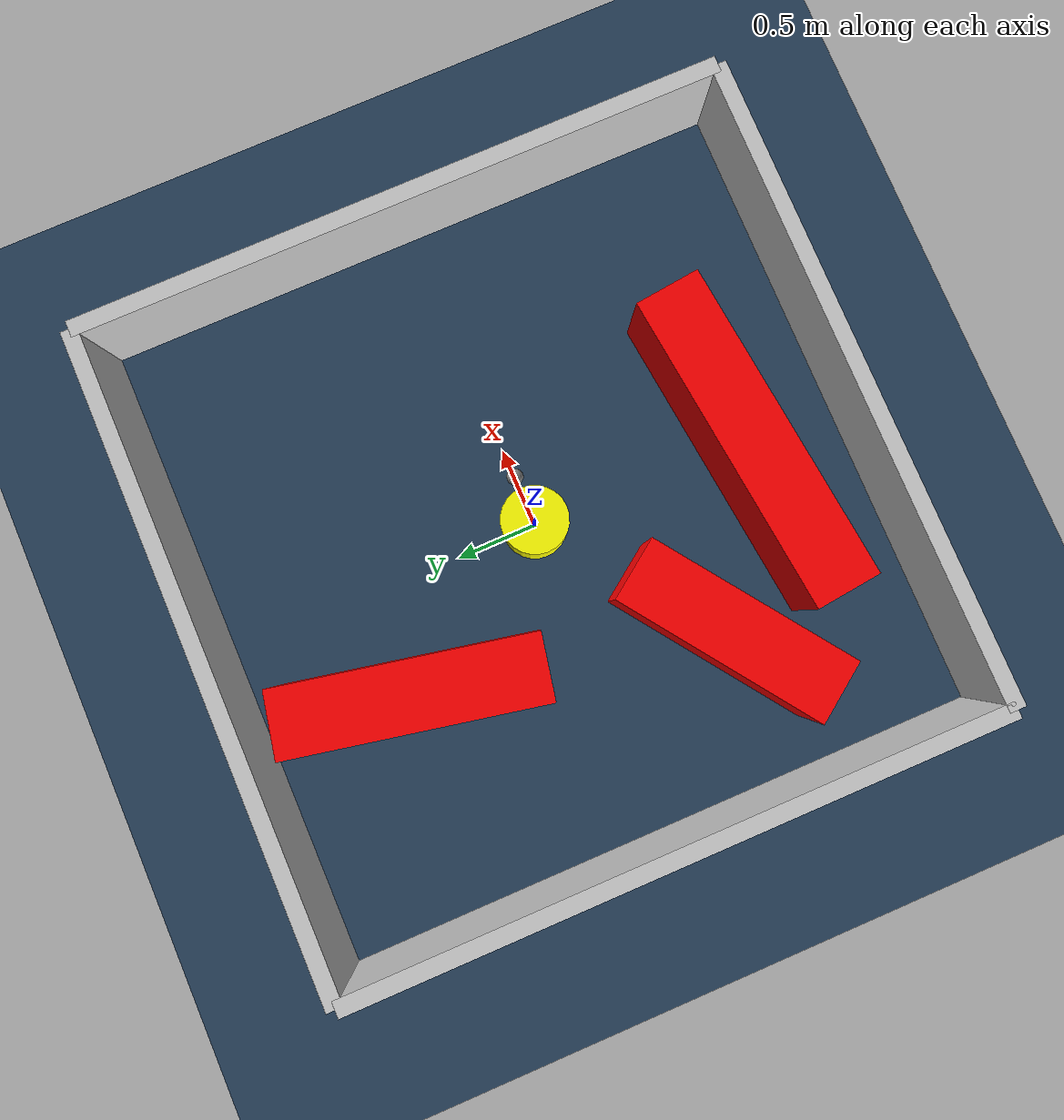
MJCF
<?xml version="1.0" ?>
<mujoco model="generated_environment">
  <option timestep="0.01" integrator="RK4" cone="elliptic"/>
  <default>
    <geom density="1"/>
  </default>
  <asset>
    <texture builtin="gradient" height="3072" rgb1="0.3 0.5 0.7" rgb2="0 0 0" type="skybox" width="512"/>
    <texture builtin="checker" height="300" mark="edge" markrgb="0.8 0.8 0.8" name="groundplane" rgb1="0.2 0.3 0.4" rgb2="0.1 0.2 0.3" type="2d" width="300"/>
    <material name="groundplane" reflectance="0.2" texrepeat="5 5" texture="groundplane" texuniform="true"/>
    <material name="robot" rgba="0.0 1.0 0.0 1"/>
  </asset>
  <worldbody>
    <light dir="0 0 -1" directional="true" pos="0 0 1.5"/>
    <geom condim="4" friction="1.0 0.005 0.001" material="groundplane" name="floor" size="0 0 0.05" type="plane"/>
    <body name="walls">
      <geom name="wall_1" condim="4" pos="-2.0 0.0 0.3" rgba="0.800000011920929 0.800000011920929 0.800000011920929 1.0" size="0.05 2.0 0.3" type="box"/>
      <geom name="wall_2" condim="4" pos="2.0 0.0 0.3" rgba="0.800000011920929 0.800000011920929 0.800000011920929 1.0" size="0.05 2.0 0.3" type="box"/>
      <geom name="wall_3" condim="4" pos="0.0 -2.0 0.3" rgba="0.800000011920929 0.800000011920929 0.800000011920929 1.0" size="2.0 0.05 0.3" type="box"/>
      <geom name="wall_4" condim="4" pos="0.0 2.0 0.3" rgba="0.800000011920929 0.800000011920929 0.800000011920929 1.0" size="2.0 0.05 0.3" type="box"/>
    </body>
    <body name="robot">
      <joint name="joint_x" type="slide" pos="0 0 0" axis="1 0 0"/>
      <joint name="joint_y" type="slide" pos="0 0 0" axis="0 1 0"/>
      <geom name="robot" type="sphere" pos="0.3 0.0 0.2" size="0.05" mass="5." friction="1.0 0.005 0.0001" condim="4" rgba="0.5 0.5 0.5 1.0"/>
      <site name="sensor_ball"/>
    </body>
    <body name="obstacle_movable_1">
      <geom name="obstacle_movable_1" condim="4" pos="0.0 0.0 0.2" euler="0 0 0.0" friction="1.0 0.005 0.001" rgba="1.0 1.0 0.0 1.0" size="0.2 0.2 0.0" type="cylinder" mass="0.1"/>
      <joint type="free"/>
    </body>
    <body name="obstacle_2_static">
      <geom name="obstacle_2_static" condim="4" pos="-0.07538817966606237 -1.3122968508715083 0.3" euler="0 0 6.645619179647322" friction="1.0 0.005 0.001" rgba="1 0 0 1" size="0.9895997904372724 0.2 0.3" type="box"/>
    </body>
    <body name="obstacle_3_static">
      <geom name="obstacle_3_static" condim="4" pos="-1.01111202830466 -0.7733347930489434 0.3" euler="0 0 215.92739889326552" friction="1.0 0.005 0.001" rgba="1 0 0 1" size="0.6582547377996314 0.2 0.3" type="box"/>
    </body>
    <body name="obstacle_4_static">
      <geom name="obstacle_4_static" condim="4" pos="-0.6370819967988919 1.0138380480896692 0.3" euler="0 0 258.83772439318966" friction="1.0 0.005 0.001" rgba="1 0 0 1" size="0.7755260921714162 0.2 0.3" type="box"/>
    </body>
  </worldbody>
  <actuator>
    <motor name="actuator_x" joint="joint_x" gear="1" ctrlrange="-1 1"/>
    <motor name="actuator_y" joint="joint_y" gear="1" ctrlrange="-1 1"/>
  </actuator>
</mujoco>
